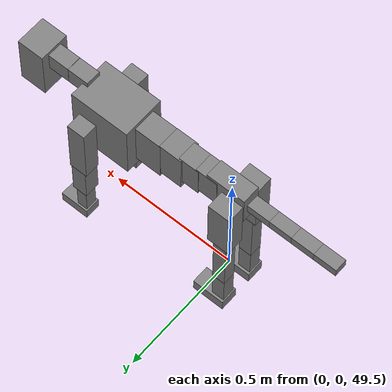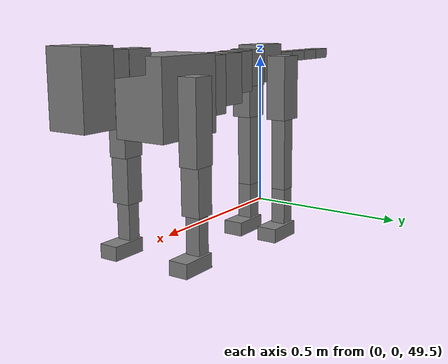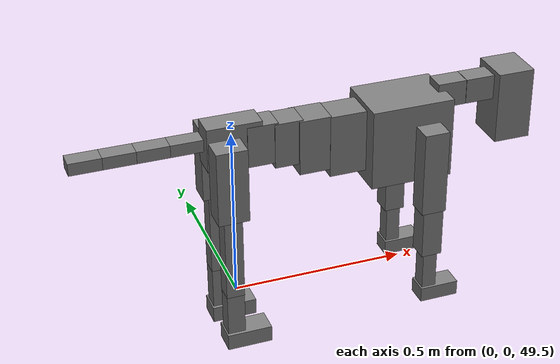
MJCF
<mujoco model="dog">

    <default>
        <joint armature="0.02" stiffness="1" damping="0.2" limited="true"/>
        <geom condim="3" friction="1 0.05 0.05" margin="0.01"/>
        <motor ctrllimited="true" ctrlrange="-1.0 1.0" forcelimited="true" gear="50"/>
    </default>

    <compiler inertiafromgeom="true" angle="radian"/>

    <option timestep="0.016" iterations="50" tolerance="1e-10" solver="Newton" jacobian="dense" cone="pyramidal"/>

    <size nconmax="20000" njmax="60000" nstack="5000000"/>
    <visual>
        <map force="0.1" zfar="30"/>
        <rgba haze="0.15 0.25 0.35 1"/>
        <quality shadowsize="2048"/>
        <global offwidth="800" offheight="800"/>
    </visual>

    <asset>
        <texture type="skybox" builtin="gradient" rgb1="0.3 0.5 0.7" rgb2="0 0 0" width="512" height="512"/>
        <texture name="texplane" type="2d" builtin="checker" rgb1=".2 .3 .4" rgb2=".1 0.15 0.2" width="512" height="512"
                 mark="cross" markrgb=".8 .8 .8"/>
        <texture name="texgeom" type="cube" builtin="flat" mark="cross" width="127" height="1278" rgb1="0.8 0.6 0.4"
                 rgb2="0.8 0.6 0.4" markrgb="1 1 1" random="0.01"/>

        <material name="matplane" reflectance="0.3" texture="texplane" texrepeat="1 1" texuniform="true"/>
        <material name="matgeom" texture="texgeom" texuniform="true" rgba="0.8 0.6 .4 1"/>
    </asset>

    <worldbody>
        <geom name="floor" pos="0 0 0" size="0 0 .25" type="plane" material="matplane" condim="3"/>

        <light directional="false" diffuse=".2 .2 .2" specular="0 0 0" pos="0 0 5" dir="0 0 -1" castshadow="false"/>
        <light mode="targetbodycom" target="torso" directional="false" diffuse=".8 .8 .8" specular="0.3 0.3 0.3"
               pos="0 0 4.0" dir="0 0 -1"/>

        <body name="root" pos="0 0 50">
            <freejoint name="root_1"/>
            <geom type="box" pos="0 0 -0.02" size="0.0774  0.0358  0.063" density="2030"/>

            <body name="spine1" pos="0.054 0 0">
                <joint name="spine1_y" axis="0 1 0" range="0 0.7" limited="true"/>
                <geom type="box" pos="0.02375 0 -0.03" size="0.04375  0.0375  0.05985" density="2030"/>

                <body name="spine2" pos="0.0612 0 0">
                    <joint name="spine2_y" axis="0 1 0" range="-0.15 0.15" limited="true"/>
                    <geom type="box" pos="0.03555  0  -0.04" size="0.04055  0.039  0.06615" density="2030"/>

                    <body name="spine3" pos="0.0730 0 0">
                        <joint name="spine3_y" axis="0 1 0" range="-0.15 0.15" limited="true"/>
                        <geom type="box" pos="0.03555  0  -0.057" size="0.04555  0.0445  0.081" density="2030"/>

                        <body name="spine4" pos="0.0780 0 0">
                            <joint name="spine4_y" axis="0 1 0" range="-0.15 0.15" limited="true"/>
                            <geom type="box" pos="0.05265  0  -0.07" size="0.05265  0.045  0.09135" density="2030"/>

                            <body name="torso" pos="0.1082 0 0">
                                <joint name="torso_y" axis="0 1 0" range="-0.15 0.15" limited="true"/>
                                <geom type="box" pos="0.11925  0  -0.085" size="0.11925  0.085  0.11745"
                                      density="2030"/>

                                <body name="neck1" pos="0.2160  0   0.0180">
                                    <joint name="neck1_y" axis="0 1 0" range="-1.2  -1" limited="true"/>
                                    <geom type="box" pos="0.0423  0  0" size="0.0423  0.03  0.036" density="2325"/>

                                    <body name="neck2" pos="0.0853  0  0">
                                        <joint name="neck2_y" axis="0 1 0" range="0.1  0" limited="true"/>
                                        <geom type="box" pos="0.0423  0  0" size="0.0423  0.03  0.036" density="2325"/>

                                        <body name="head" pos="0.0853  0  0">
                                            <joint name="head_y" axis="0 1 0" range="-0.3  -0.2" limited="true"/>
                                            <geom type="box" pos="0.0531  0  -0.055" size="0.0531  0.06  0.1044"
                                                  density="4030"/>

                                        </body>
                                    </body>
                                </body>

                                <body name="front_shoulder" pos="0.156  0   -0.0480">
                                    <joint name="front_shoulder_y" axis="0 1 0" range="-1 1.5" limited="true"/>
                                    <geom type="box" pos="0 0.13 -0.0976" size="0.0357  0.0305  0.1242" density="1158"/>
                                    <geom type="box" pos="0 -0.13 -0.0976" size="0.0357  0.0305  0.1242"
                                          density="1158"/>

                                    <body name="front_elbow" pos="0  0  -0.1951">
                                        <joint name="front_elbow_y" axis="0 1 0" range="-2 0" limited="true"/>
                                        <geom type="box" pos="0 0.13 -0.0832" size="0.0297  0.0304  0.0832"
                                              density="1081"/>
                                        <geom type="box" pos="0 -0.13 -0.0832" size="0.0297  0.0304  0.0832"
                                              density="1081"/>

                                        <body name="front_wrist" pos="0  0  -0.1663">
                                            <joint name="front_wrist_y" axis="0 1 0" range="-0.2 0" limited="true"/>
                                            <geom type="box" pos="0 0.13 -0.0632" size="0.0208  0.0231  0.0763"
                                                  density="1664"/>
                                            <geom type="box" pos="0 -0.13 -0.0632" size="0.0208  0.0231  0.0763"
                                                  density="1664"/>

                                            <body name="front_finger_end" pos="0  0  -0.1263">
                                                <joint name="front_finger_y" axis="0 1 0" range="-0.4 1"
                                                       limited="true"/>
                                                <geom type="box" pos="0.0308  0.13  -0.0067"
                                                      size="0.0565  0.0308  0.0217" density="1515"/>
                                                <geom type="box" pos="0.0308  -0.13  -0.0067"
                                                      size="0.0565  0.0308  0.0217" density="1515"/>

                                            </body>

                                        </body>
                                    </body>
                                </body>

                            </body>
                        </body>
                    </body>
                </body>
            </body>

            <body name="back_hip" pos="-0.03 0 -0.018">
                <joint name="back_hip_y" axis="0 1 0" range="-1.5 0.3" limited="true"/>
                <geom type="box" pos="0 0.07 -0.0857" size="0.0439  0.0345  0.1085" density="1154"/>
                <geom type="box" pos="0 -0.07 -0.0857" size="0.0439  0.0345  0.1085" density="1154"/>

                <body name="back_knee" pos="0  0  -0.1715">
                    <joint name="back_knee_y" axis="0 1 0" range="0 2.8" limited="true"/>
                    <geom type="box" pos="0 0.07 -0.1260" size="0.0259  0.0255  0.1415" density="1227"/>
                    <geom type="box" pos="0 -0.07 -0.1260" size="0.0259  0.0255  0.1415" density="1227"/>

                    <body name="back_ankle" pos="0  0  -0.2519">
                        <joint name="back_ankle_y" axis="0 1 0" range="-2.2 0" limited="true"/>
                        <geom type="box" pos="0 0.07 -0.0760" size="0.0252  0.0252  0.0873" density="1284"/>
                        <geom type="box" pos="0 -0.07 -0.0760" size="0.0252  0.0252  0.0873" density="1284"/>

                        <body name="back_toe_end" pos="0  0  -0.1520">
                            <joint name="back_toe_y" axis="0 1 0" range="-0.4 1" limited="true"/>
                            <geom type="box" pos="0.0352  0.07  -0.0089" size="0.0645  0.0352  0.0239" density="1515"/>
                            <geom type="box" pos="0.0352  -0.07  -0.0089" size="0.0645  0.0352  0.0239" density="1515"/>

                        </body>
                    </body>
                </body>
            </body>

            <body name="tail1" pos="-0.074 0 -0.006">
                <joint name="tail1_y" axis="0 1 0" range="-0.2 0.2" limited="true"/>
                <geom type="box" pos="-0.0536  0  0" size="0.045  0.025  0.0175" density="1587"/>

                <body name="tail2" pos="-0.09 0 0">
                    <joint name="tail2_y" axis="0 1 0" range="-0.2 0.2" limited="true"/>
                    <geom type="box" pos="-0.0536  0  0" size="0.045  0.025  0.0175" density="1587"/>

                    <body name="tail3" pos="-0.09 0 0">
                        <joint name="tail3_y" axis="0 1 0" range="-0.2 0.2" limited="true"/>
                        <geom type="box" pos="-0.0536  0  0" size="0.045  0.025  0.0175" density="1587"/>

                        <body name="tail4" pos="-0.09 0 0">
                            <joint name="tail4_y" axis="0 1 0" range="-0.2 0.2" limited="true"/>
                            <geom type="box" pos="-0.0536  0  0" size="0.045  0.025  0.0175" density="1587"/>

                        </body>
                    </body>
                </body>
            </body>
        </body>
    </worldbody>

    <actuator>
        <motor joint="spine1_y" forcerange="-150 150     "/>
        <motor joint="spine2_y" forcerange="-150 150     "/>
        <motor joint="spine3_y" forcerange="-150 150     "/>
        <motor joint="spine4_y" forcerange="-150 150     "/>
        <motor joint="torso_y" forcerange="-150 150     "/>
        <motor joint="neck1_y" forcerange="-100 100       "/>
        <motor joint="neck2_y" forcerange="-100 100       "/>
        <motor joint="head_y" forcerange="-150 150       "/>
        <motor joint="front_shoulder_y" forcerange="-159.95 143.62"/>
        <motor joint="front_elbow_y" forcerange="-141.90 179.10"/>
        <motor joint="front_wrist_y" forcerange="-125.90 59.23"/>
        <motor joint="front_finger_y" forcerange="-84.06 40.37"/>
        <motor joint="back_hip_y" forcerange="-283.29 376.23"/>
        <motor joint="back_knee_y" forcerange="-258.35 313.12"/>
        <motor joint="back_angle_y" forcerange="-133.65 170.14"/>
        <motor joint="back_toe_y" forcerange="-101.79 99.73"/>
        <motor joint="tail1_y" forcerange="-50 50     "/>
        <motor joint="tail2_y" forcerange="-50 50     "/>
        <motor joint="tail3_y" forcerange="-50 50     "/>
        <motor joint="tail4_y" forcerange="-50 50     "/>
    </actuator>
</mujoco>
